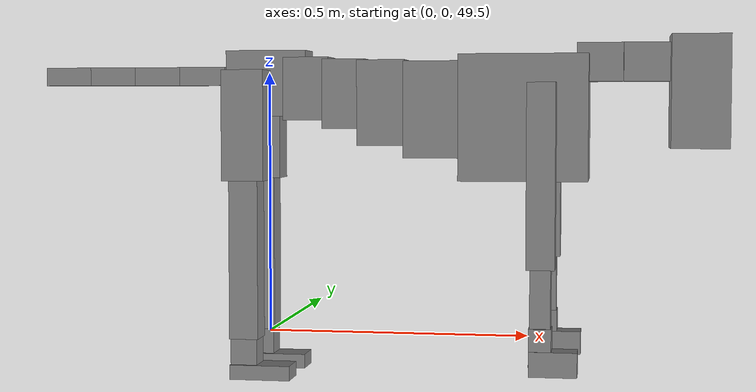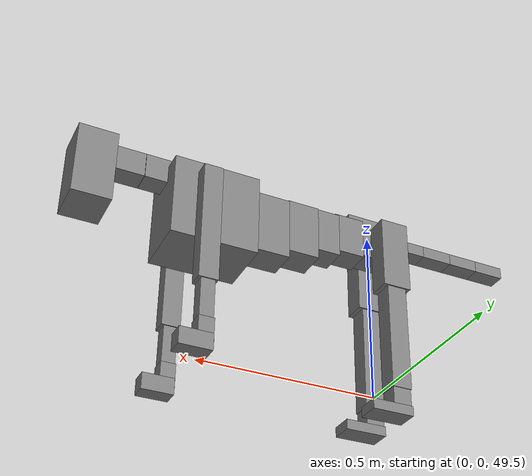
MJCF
<mujoco model="dog">

    <default>
        <joint armature="0.02" stiffness="1" damping="0.2" limited="true"/>
        <geom condim="3" friction="1 0.05 0.05" margin="0.01"/>
        <motor ctrllimited="true" ctrlrange="-1.0 1.0" forcelimited="true" gear="50"/>
    </default>

    <compiler inertiafromgeom="true" angle="radian"/>

    <option timestep="0.016" iterations="50" tolerance="1e-10" solver="Newton" jacobian="dense" cone="pyramidal"/>

    <size nconmax="20000" njmax="60000" nstack="5000000"/>
    <visual>
        <map force="0.1" zfar="30"/>
        <rgba haze="0.15 0.25 0.35 1"/>
        <quality shadowsize="2048"/>
        <global offwidth="800" offheight="800"/>
    </visual>

    <asset>
        <texture type="skybox" builtin="gradient" rgb1="0.3 0.5 0.7" rgb2="0 0 0" width="512" height="512"/>
        <texture name="texplane" type="2d" builtin="checker" rgb1=".2 .3 .4" rgb2=".1 0.15 0.2" width="512" height="512"
                 mark="cross" markrgb=".8 .8 .8"/>
        <texture name="texgeom" type="cube" builtin="flat" mark="cross" width="127" height="1278" rgb1="0.8 0.6 0.4"
                 rgb2="0.8 0.6 0.4" markrgb="1 1 1" random="0.01"/>

        <material name="matplane" reflectance="0.3" texture="texplane" texrepeat="1 1" texuniform="true"/>
        <material name="matgeom" texture="texgeom" texuniform="true" rgba="0.8 0.6 .4 1"/>
    </asset>

    <worldbody>
        <geom name="floor" pos="0 0 0" size="0 0 .25" type="plane" material="matplane" condim="3"/>

        <light directional="false" diffuse=".2 .2 .2" specular="0 0 0" pos="0 0 5" dir="0 0 -1" castshadow="false"/>
        <light mode="targetbodycom" target="torso" directional="false" diffuse=".8 .8 .8" specular="0.3 0.3 0.3"
               pos="0 0 4.0" dir="0 0 -1"/>

        <body name="root" pos="0 0 50">
            <freejoint name="root_1"/>
            <geom type="box" pos="0 0 -0.02" size="0.0774  0.0358  0.063" density="2030"/>

            <body name="spine1" pos="0.054 0 0">
                <joint name="spine1_y" axis="0 1 0" range="0 0.7" limited="true"/>
                <geom type="box" pos="0.02375 0 -0.03" size="0.04375  0.0375  0.05985" density="2030"/>

                <body name="spine2" pos="0.0612 0 0">
                    <joint name="spine2_y" axis="0 1 0" range="-0.15 0.15" limited="true"/>
                    <geom type="box" pos="0.03555  0  -0.04" size="0.04055  0.039  0.06615" density="2030"/>

                    <body name="spine3" pos="0.0730 0 0">
                        <joint name="spine3_y" axis="0 1 0" range="-0.15 0.15" limited="true"/>
                        <geom type="box" pos="0.03555  0  -0.057" size="0.04555  0.0445  0.081" density="2030"/>

                        <body name="spine4" pos="0.0780 0 0">
                            <joint name="spine4_y" axis="0 1 0" range="-0.15 0.15" limited="true"/>
                            <geom type="box" pos="0.05265  0  -0.07" size="0.05265  0.045  0.09135" density="2030"/>

                            <body name="torso" pos="0.1082 0 0">
                                <joint name="torso_y" axis="0 1 0" range="-0.15 0.15" limited="true"/>
                                <geom type="box" pos="0.11925  0  -0.085" size="0.11925  0.085  0.11745"
                                      density="2030"/>

                                <body name="neck1" pos="0.2160  0   0.0180">
                                    <joint name="neck1_y" axis="0 1 0" range="-1.2  -1" limited="true"/>
                                    <geom type="box" pos="0.0423  0  0" size="0.0423  0.03  0.036" density="2325"/>

                                    <body name="neck2" pos="0.0853  0  0">
                                        <joint name="neck2_y" axis="0 1 0" range="0.1  0" limited="true"/>
                                        <geom type="box" pos="0.0423  0  0" size="0.0423  0.03  0.036" density="2325"/>

                                        <body name="head" pos="0.0853  0  0">
                                            <joint name="head_y" axis="0 1 0" range="-0.3  -0.2" limited="true"/>
                                            <geom type="box" pos="0.0531  0  -0.055" size="0.0531  0.06  0.1044"
                                                  density="4030"/>

                                        </body>
                                    </body>
                                </body>

                                <body name="front_shoulder" pos="0.156  0   -0.0480">
                                    <joint name="front_shoulder_y" axis="0 1 0" range="-1 1.5" limited="true"/>
                                    <geom type="box" pos="0 0.13 -0.1417" size="0.0259  0.0221  0.1684" density="1158"/>
                                    <geom type="box" pos="0 -0.13 -0.1417" size="0.0259  0.0221  0.1684"
                                          density="1158"/>

                                    <body name="front_elbow" pos="0  0  -0.2835">
                                        <joint name="front_elbow_y" axis="0 1 0" range="-2 0" limited="true"/>
                                        <geom type="box" pos="0 0.13 -0.0728" size="0.0187  0.0191  0.0728"
                                              density="1081"/>
                                        <geom type="box" pos="0 -0.13 -0.0728" size="0.0187  0.0191  0.0728"
                                              density="1081"/>

                                        <body name="front_wrist" pos="0  0  -0.1456">
                                            <joint name="front_wrist_y" axis="0 1 0" range="-0.2 0" limited="true"/>
                                            <geom type="box" pos="0 0.13 -0.0217" size="0.0204  0.0227  0.0348"
                                                  density="1664"/>
                                            <geom type="box" pos="0 -0.13 -0.0217" size="0.0204  0.0227  0.0348"
                                                  density="1664"/>

                                            <body name="front_finger_end" pos="0  0  -0.0433">
                                                <joint name="front_finger_y" axis="0 1 0" range="-0.4 1"
                                                       limited="true"/>
                                                <geom type="box" pos="0.0236  0.13  -0.0078"
                                                      size="0.0433  0.0236  0.0228" density="1515"/>
                                                <geom type="box" pos="0.0236  -0.13  -0.0078"
                                                      size="0.0433  0.0236  0.0228" density="1515"/>

                                            </body>

                                        </body>
                                    </body>
                                </body>

                            </body>
                        </body>
                    </body>
                </body>
            </body>

            <body name="back_hip" pos="-0.03 0 -0.018">
                <joint name="back_hip_y" axis="0 1 0" range="-1.5 0.3" limited="true"/>
                <geom type="box" pos="0 0.07 -0.0817" size="0.0402  0.0316  0.1045" density="1154"/>
                <geom type="box" pos="0 -0.07 -0.0817" size="0.0402  0.0316  0.1045" density="1154"/>

                <body name="back_knee" pos="0  0  -0.1634">
                    <joint name="back_knee_y" axis="0 1 0" range="0 2.8" limited="true"/>
                    <geom type="box" pos="0 0.07 -0.1537" size="0.0276  0.0272  0.1692" density="1227"/>
                    <geom type="box" pos="0 -0.07 -0.1537" size="0.0276  0.0272  0.1692" density="1227"/>

                    <body name="back_ankle" pos="0  0  -0.3074">
                        <joint name="back_ankle_y" axis="0 1 0" range="-2.2 0" limited="true"/>
                        <geom type="box" pos="0 0.07 -0.0397" size="0.0253  0.0253  0.0510" density="1284"/>
                        <geom type="box" pos="0 -0.07 -0.0397" size="0.0253  0.0253  0.0510" density="1284"/>

                        <body name="back_toe_end" pos="0  0  -0.0795">
                            <joint name="back_toe_y" axis="0 1 0" range="-0.4 1" limited="true"/>
                            <geom type="box" pos="0.0314  0.07  0.0012" size="0.0575  0.0314  0.0138" density="1515"/>
                            <geom type="box" pos="0.0314  -0.07  0.0012" size="0.0575  0.0314  0.0138" density="1515"/>

                        </body>
                    </body>
                </body>
            </body>

            <body name="tail1" pos="-0.074 0 -0.006">
                <joint name="tail1_y" axis="0 1 0" range="-0.2 0.2" limited="true"/>
                <geom type="box" pos="-0.0536  0  0" size="0.045  0.025  0.0175" density="1587"/>

                <body name="tail2" pos="-0.09 0 0">
                    <joint name="tail2_y" axis="0 1 0" range="-0.2 0.2" limited="true"/>
                    <geom type="box" pos="-0.0536  0  0" size="0.045  0.025  0.0175" density="1587"/>

                    <body name="tail3" pos="-0.09 0 0">
                        <joint name="tail3_y" axis="0 1 0" range="-0.2 0.2" limited="true"/>
                        <geom type="box" pos="-0.0536  0  0" size="0.045  0.025  0.0175" density="1587"/>

                        <body name="tail4" pos="-0.09 0 0">
                            <joint name="tail4_y" axis="0 1 0" range="-0.2 0.2" limited="true"/>
                            <geom type="box" pos="-0.0536  0  0" size="0.045  0.025  0.0175" density="1587"/>

                        </body>
                    </body>
                </body>
            </body>
        </body>
    </worldbody>

    <actuator>
        <motor joint="spine1_y" forcerange="-150 150     "/>
        <motor joint="spine2_y" forcerange="-150 150     "/>
        <motor joint="spine3_y" forcerange="-150 150     "/>
        <motor joint="spine4_y" forcerange="-150 150     "/>
        <motor joint="torso_y" forcerange="-150 150     "/>
        <motor joint="neck1_y" forcerange="-100 100       "/>
        <motor joint="neck2_y" forcerange="-100 100       "/>
        <motor joint="head_y" forcerange="-150 150       "/>
        <motor joint="front_shoulder_y" forcerange="-127.02 120.50"/>
        <motor joint="front_elbow_y" forcerange="-121.08 117.83"/>
        <motor joint="front_wrist_y" forcerange="-99.61 81.94"/>
        <motor joint="front_finger_y" forcerange="-52.30 33.77"/>
        <motor joint="back_hip_y" forcerange="-311.02 309.70"/>
        <motor joint="back_knee_y" forcerange="-275.66 320.51"/>
        <motor joint="back_angle_y" forcerange="-241.68 62.61"/>
        <motor joint="back_toe_y" forcerange="-94.13 76.73"/>
        <motor joint="tail1_y" forcerange="-50 50     "/>
        <motor joint="tail2_y" forcerange="-50 50     "/>
        <motor joint="tail3_y" forcerange="-50 50     "/>
        <motor joint="tail4_y" forcerange="-50 50     "/>
    </actuator>
</mujoco>
